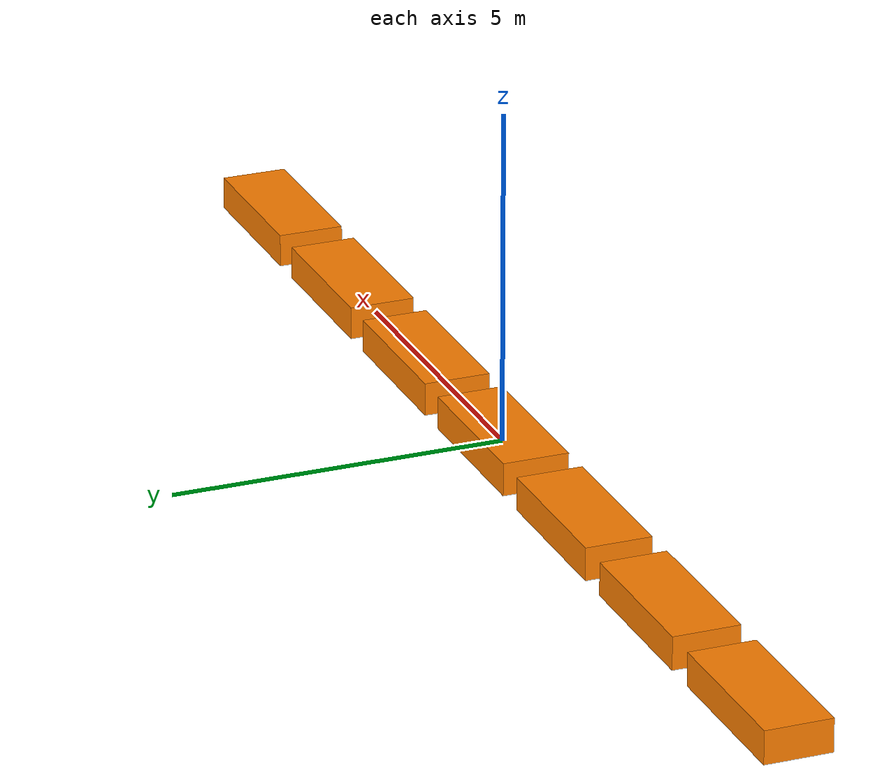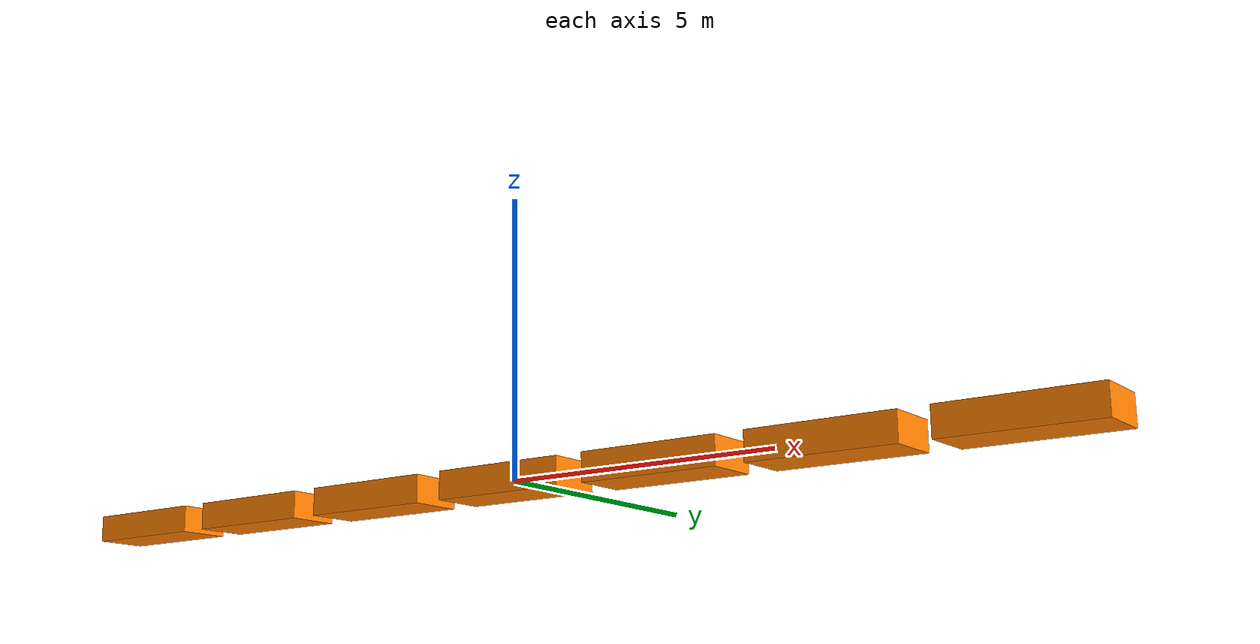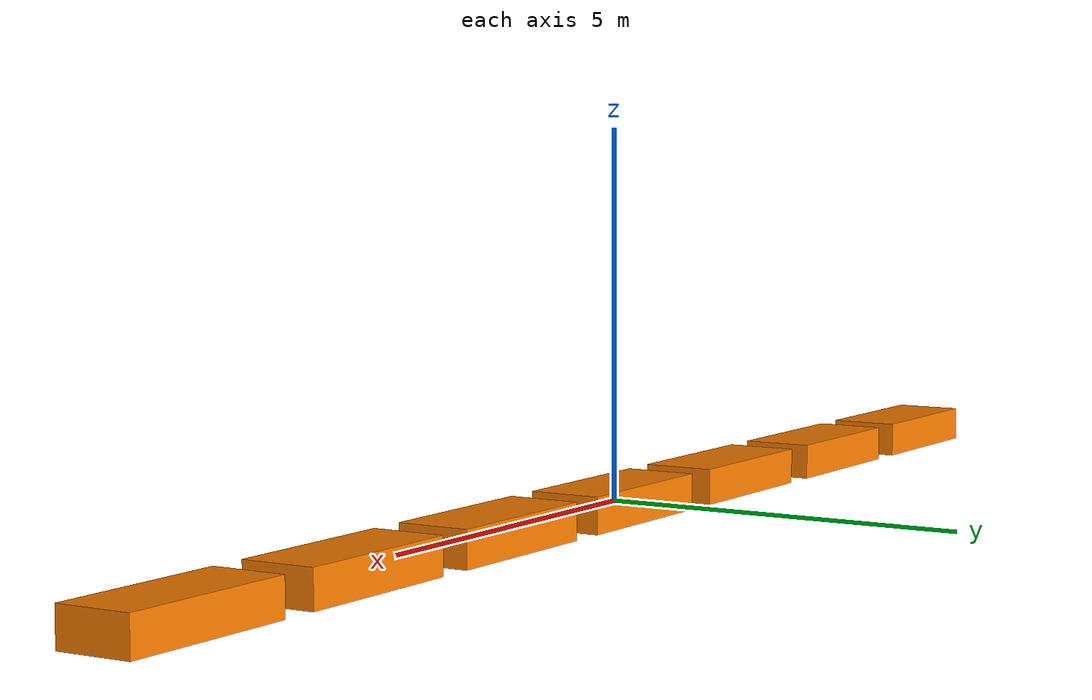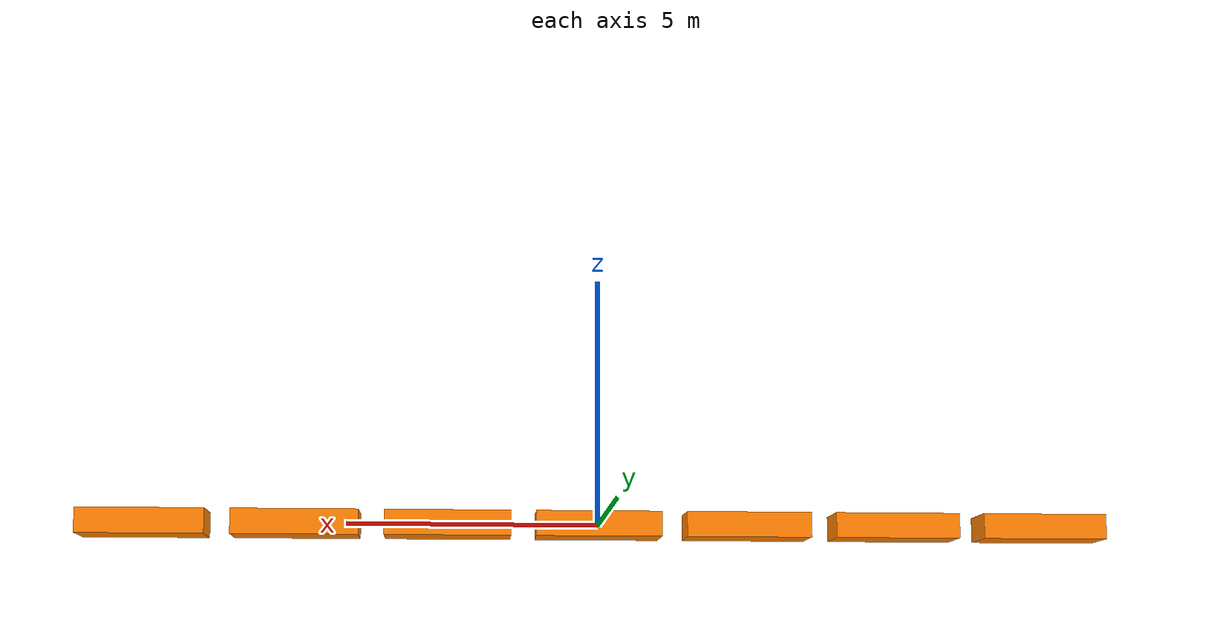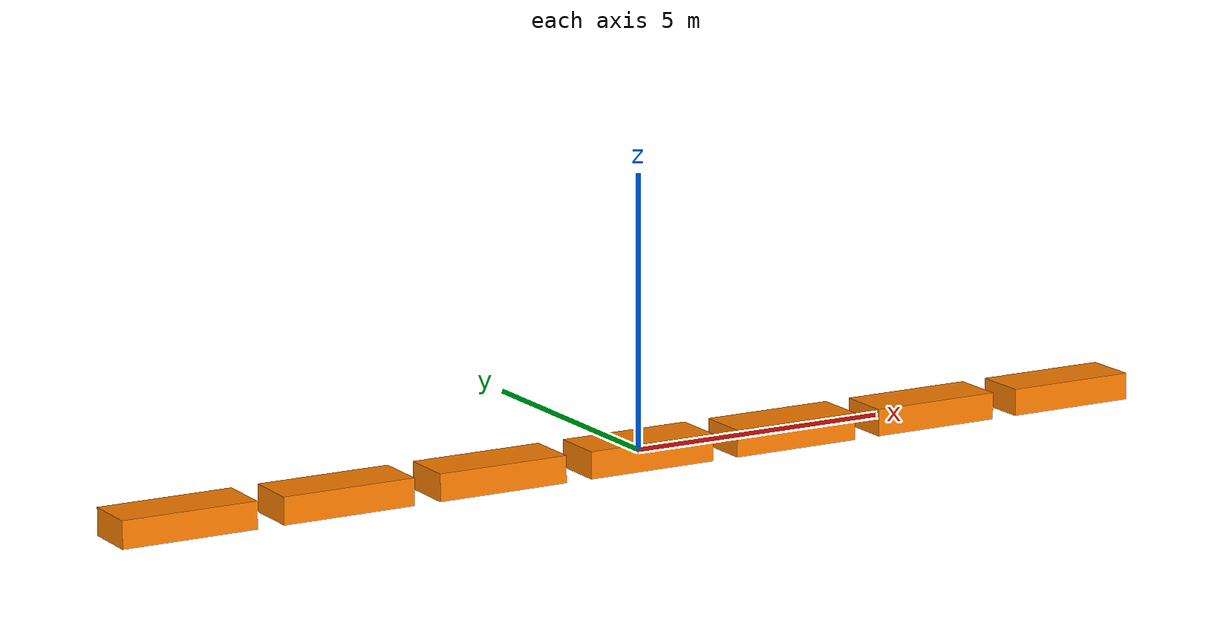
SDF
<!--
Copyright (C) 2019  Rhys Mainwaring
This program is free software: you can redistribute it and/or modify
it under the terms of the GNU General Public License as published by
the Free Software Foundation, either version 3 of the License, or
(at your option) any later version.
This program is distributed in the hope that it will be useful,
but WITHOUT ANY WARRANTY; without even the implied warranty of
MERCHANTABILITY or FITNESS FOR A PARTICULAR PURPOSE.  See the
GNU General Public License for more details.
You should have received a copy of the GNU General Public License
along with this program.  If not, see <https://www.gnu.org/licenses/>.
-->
<?xml version="1.0" ?>
<sdf version="1.6">

  <model name="barrage">
    <static>false</static>

    <plugin name="hydrodynamics" filename="libHydrodynamicsPlugin.so">
      <!-- Wave Model -->
      <wave_model>ocean_waves</wave_model>

      <!-- Hydrodynamics -->
      <damping_on>true</damping_on>
      <viscous_drag_on>true</viscous_drag_on>
      <pressure_drag_on>true</pressure_drag_on>

      <!-- Markers -->
      <markers>
        <update_rate>30</update_rate>
        <water_patch>false</water_patch>
        <waterline>false</waterline>
        <underwater_surface>false</underwater_surface>
      </markers>
    </plugin>

    <include>
      <pose>0 0 0 0 0 0</pose>
      <uri>model://barrage_buoy</uri>
      <name>asv_barrage_buoy0</name>
    </include>

    <include>
      <pose>-3.0 0 0 0 0 0</pose>
      <uri>model://barrage_buoy</uri>
      <name>barrage_buoy-1</name>
    </include>

    <include>
      <pose>3.0 0 0 0 0 0</pose>
      <uri>model://barrage_buoy</uri>
      <name>barrage_buoy+1</name>
    </include>

    <include>
      <pose>-6.0 0 0 0 0 0</pose>
      <uri>model://barrage_buoy</uri>
      <name>barrage_buoy-2</name>
    </include>

    <include>
      <pose>6.0 0 0 0 0 0</pose>
      <uri>model://barrage_buoy</uri>
      <name>barrage_buoy+2</name>
    </include>

    <include>
      <pose>-9.0 0 0 0 0 0</pose>
      <uri>model://barrage_buoy</uri>
      <name>barrage_buoy-3</name>
    </include>

    <include>
      <pose>9.0 0 0 0 0 0</pose>
      <uri>model://barrage_buoy</uri>
      <name>barrage_buoy+3</name>
    </include>

    <joint type="universal" name="barrage_buoy_0_-1_joint">
      <pose>1.5 0 0 0 0 0</pose>
      <child>barrage_buoy-1::base_link</child>
      <parent>asv_barrage_buoy0::base_link</parent>
      <axis>
        <xyz>0 1 0</xyz>
        <limit>
          <lower>-0.78539</lower>
          <upper>0.78539</upper>
        </limit>
      </axis>
      <axis2>
        <xyz>0 0 1</xyz>
        <limit>
          <lower>-0.78539</lower>
          <upper>0.78539</upper>
        </limit>
      </axis2>
    </joint>

    <joint type="universal" name="barrage_buoy_0_+1_joint">
      <pose>-1.5 0 0 0 0 0</pose>
      <child>barrage_buoy+1::base_link</child>
      <parent>asv_barrage_buoy0::base_link</parent>
      <axis>
        <xyz>0 1 0</xyz>
        <limit>
          <lower>-0.78539</lower>
          <upper>0.78539</upper>
        </limit>
      </axis>
      <axis2>
        <xyz>0 0 1</xyz>
        <limit>
          <lower>-0.78539</lower>
          <upper>0.78539</upper>
        </limit>
      </axis2>
    </joint>

    <joint type="universal" name="barrage_buoy_-1_-2_joint">
      <pose>1.5 0 0 0 0 0</pose>
      <child>barrage_buoy-2::base_link</child>
      <parent>barrage_buoy-1::base_link</parent>
      <axis>
        <xyz>0 1 0</xyz>
        <limit>
          <lower>-0.78539</lower>
          <upper>0.78539</upper>
        </limit>
      </axis>
      <axis2>
        <xyz>0 0 1</xyz>
        <limit>
          <lower>-0.78539</lower>
          <upper>0.78539</upper>
        </limit>
      </axis2>
    </joint>

    <joint type="universal" name="barrage_buoy_+1_+2_joint">
      <pose>-1.5 0 0 0 0 0</pose>
      <child>barrage_buoy+2::base_link</child>
      <parent>barrage_buoy+1::base_link</parent>
      <axis>
        <xyz>0 1 0</xyz>
        <limit>
          <lower>-0.78539</lower>
          <upper>0.78539</upper>
        </limit>
      </axis>
      <axis2>
        <xyz>0 0 1</xyz>
        <limit>
          <lower>-0.78539</lower>
          <upper>0.78539</upper>
        </limit>
      </axis2>
    </joint>

    <joint type="universal" name="barrage_buoy_-2_-3_joint">
      <pose>1.5 0 0 0 0 0</pose>
      <child>barrage_buoy-3::base_link</child>
      <parent>barrage_buoy-2::base_link</parent>
      <axis>
        <xyz>0 1 0</xyz>
        <limit>
          <lower>-0.78539</lower>
          <upper>0.78539</upper>
        </limit>
      </axis>
      <axis2>
        <xyz>0 0 1</xyz>
        <limit>
          <lower>-0.78539</lower>
          <upper>0.78539</upper>
        </limit>
      </axis2>
    </joint>

    <joint type="universal" name="barrage_buoy_+2_+3_joint">
      <pose>-1.5 0 0 0 0 0</pose>
      <child>barrage_buoy+3::base_link</child>
      <parent>barrage_buoy+2::base_link</parent>
      <axis>
        <xyz>0 1 0</xyz>
        <limit>
          <lower>-0.78539</lower>
          <upper>0.78539</upper>
        </limit>
      </axis>
      <axis2>
        <xyz>0 0 1</xyz>
        <limit>
          <lower>-0.78539</lower>
          <upper>0.78539</upper>
        </limit>
      </axis2>
    </joint>

  </model>
</sdf>

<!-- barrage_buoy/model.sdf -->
<sdf version="1.6">
  <model name="barrage_buoy">
    <plugin
        filename="ignition-marine1-hydrodynamics-system"
        name="ignition::gazebo::systems::Hydrodynamics">
    </plugin>
    <link name="base_link">
      <visual name="visual">
        <geometry>
          <box>
            <size>2.5 1 0.5</size>
          </box>
        </geometry>
        <material>
          <ambient>1.0 0.5 0.0 1.0</ambient>
          <diffuse>1.0 0.5 0.0 1.0</diffuse>
          <specular>0.8 0.8 0.8 1.0</specular>
        </material>
      </visual>
      <collision name="collision">
        <geometry>
          <box>
            <size>2.5 1 0.5</size>
          </box>
        </geometry>
      </collision>
      <inertial>
        <mass>312.5</mass>
        <inertia>
          <ixx>32.5</ixx>
          <ixy>0.0</ixy>
          <ixz>0.0</ixz>
          <iyy>169.3</iyy>
          <iyz>0.0</iyz>
          <izz>188.8</izz>
        </inertia>
      </inertial>
    </link>
  </model>
</sdf>
